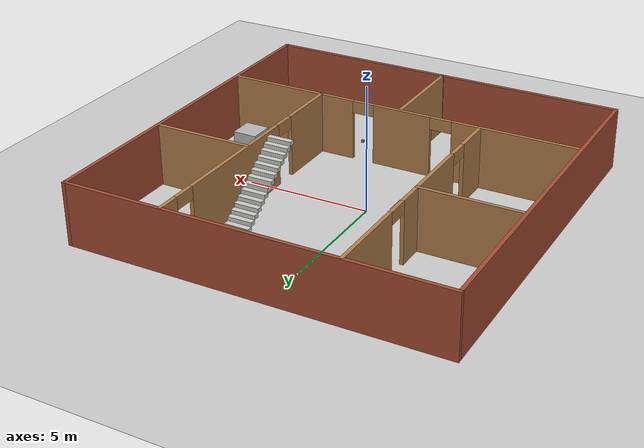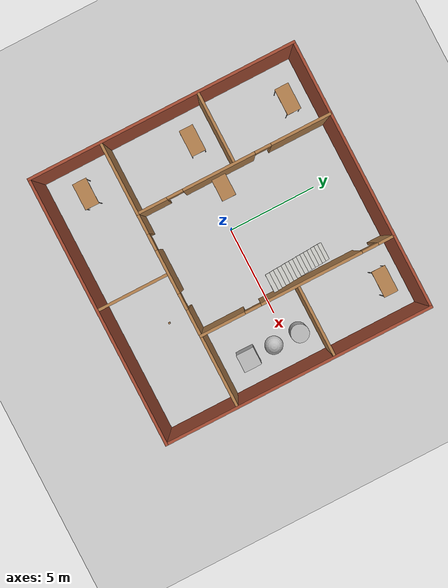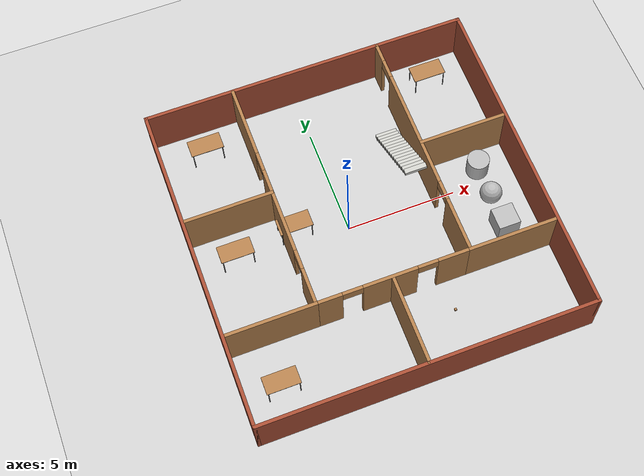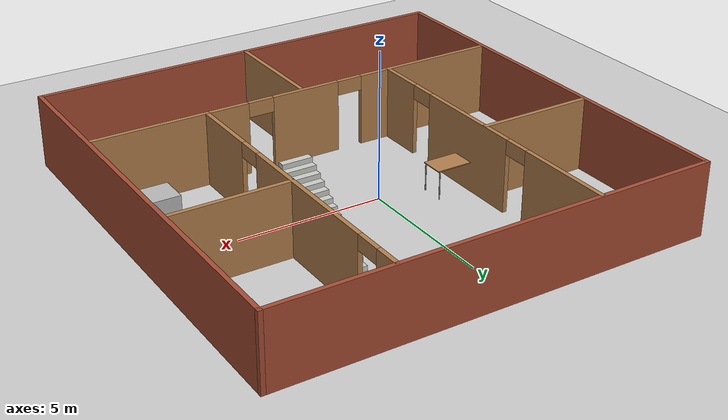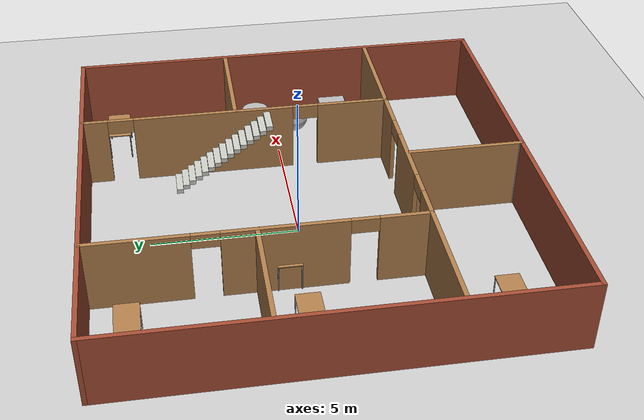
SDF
<sdf version="1.4">
 <world name="default">
  <light name="sun" type="directional">
   <pose>0 0 10 0 -0 0</pose>
   <diffuse>0.8 0.8 0.8 1</diffuse>
   <specular>0.2 0.2 0.2 1</specular>
   <attenuation>
    <range>1000</range>
    <constant>0.9</constant>
    <linear>0.01</linear>
    <quadratic>0.001</quadratic>
   </attenuation>
   <direction>-0.5 0.1 -0.9</direction>
   <spot><inner_angle>0</inner_angle><outer_angle>0</outer_angle><falloff>0</falloff></spot>
  </light>
  <model name="ground_plane">
   <static>1</static>
   <link name="link">
    <collision name="collision">
     <geometry><plane><normal>0 0 1</normal><size>100 100</size></plane></geometry>
     <surface>
      <contact><collide_bitmask>65535</collide_bitmask></contact>
      <friction><ode><mu>100</mu><mu2>50</mu2></ode></friction>
     </surface>
    </collision>
    <visual name="visual">
     <cast_shadows>0</cast_shadows>
     <geometry><plane><normal>0 0 1</normal><size>100 100</size></plane></geometry>
     <material>
      <script><uri>file://media/materials/scripts/gazebo.material</uri><name>Gazebo/Grey</name></script>
     </material>
    </visual>
   </link>
  </model>
  <gravity>0 0 -9.8</gravity>
  <magnetic_field>6e-06 2.3e-05 -4.2e-05</magnetic_field>
  <atmosphere type="adiabatic"/>
  <physics type="ode">
   <max_step_size>0.001</max_step_size>
   <real_time_factor>1</real_time_factor>
   <real_time_update_rate>1000</real_time_update_rate>
  </physics>
  <scene><ambient>0.4 0.4 0.4 1</ambient><background>0.7 0.7 0.7 1</background><shadows>1</shadows></scene>
  <spherical_coordinates>
   <surface_model>EARTH_WGS84</surface_model>
   <latitude_deg>0</latitude_deg>
   <longitude_deg>0</longitude_deg>
   <elevation>0</elevation>
   <heading_deg>0</heading_deg>
  </spherical_coordinates>
  <model name="my_building">
   <pose>2.08113 -0.36477 0 0 -0 0</pose>
   <link name="Stairs_0">
    <visual name="Stairs_0_Visual_0">
     <pose>1.21745 4.206 0.083333 0 -0 0</pose>
     <geometry><box><size>1 0.233333 0.166667</size></box></geometry>
     <material>
      <script><uri>file://media/materials/scripts/gazebo.material</uri><name>Gazebo/CeilingTiled</name></script>
      <ambient>1 1 1 1</ambient>
     </material>
     <meta><layer>0</layer></meta>
    </visual>
    <collision name="Stairs_0_Collision_0">
     <geometry><box><size>1 0.233333 0.166667</size></box></geometry>
     <pose>1.21745 4.206 0.083333 0 -0 0</pose>
    </collision>
    <visual name="Stairs_0_Visual_1">
     <pose>1.21745 3.97267 0.25 0 -0 0</pose>
     <geometry><box><size>1 0.233333 0.166667</size></box></geometry>
     <material>
      <script><uri>file://media/materials/scripts/gazebo.material</uri><name>Gazebo/CeilingTiled</name></script>
      <ambient>1 1 1 1</ambient>
     </material>
     <meta><layer>0</layer></meta>
    </visual>
    <collision name="Stairs_0_Collision_1">
     <geometry><box><size>1 0.233333 0.166667</size></box></geometry>
     <pose>1.21745 3.97267 0.25 0 -0 0</pose>
    </collision>
    <visual name="Stairs_0_Visual_2">
     <pose>1.21745 3.73934 0.416667 0 -0 0</pose>
     <geometry><box><size>1 0.233333 0.166667</size></box></geometry>
     <material>
      <script><uri>file://media/materials/scripts/gazebo.material</uri><name>Gazebo/CeilingTiled</name></script>
      <ambient>1 1 1 1</ambient>
     </material>
     <meta><layer>0</layer></meta>
    </visual>
    <collision name="Stairs_0_Collision_2">
     <geometry><box><size>1 0.233333 0.166667</size></box></geometry>
     <pose>1.21745 3.73934 0.416667 0 -0 0</pose>
    </collision>
    <visual name="Stairs_0_Visual_3">
     <pose>1.21745 3.506 0.583333 0 -0 0</pose>
     <geometry><box><size>1 0.233333 0.166667</size></box></geometry>
     <material>
      <script><uri>file://media/materials/scripts/gazebo.material</uri><name>Gazebo/CeilingTiled</name></script>
      <ambient>1 1 1 1</ambient>
     </material>
     <meta><layer>0</layer></meta>
    </visual>
    <collision name="Stairs_0_Collision_3">
     <geometry><box><size>1 0.233333 0.166667</size></box></geometry>
     <pose>1.21745 3.506 0.583333 0 -0 0</pose>
    </collision>
    <visual name="Stairs_0_Visual_4">
     <pose>1.21745 3.27267 0.75 0 -0 0</pose>
     <geometry><box><size>1 0.233333 0.166667</size></box></geometry>
     <material>
      <script><uri>file://media/materials/scripts/gazebo.material</uri><name>Gazebo/CeilingTiled</name></script>
      <ambient>1 1 1 1</ambient>
     </material>
     <meta><layer>0</layer></meta>
    </visual>
    <collision name="Stairs_0_Collision_4">
     <geometry><box><size>1 0.233333 0.166667</size></box></geometry>
     <pose>1.21745 3.27267 0.75 0 -0 0</pose>
    </collision>
    <visual name="Stairs_0_Visual_5">
     <pose>1.21745 3.03934 0.916667 0 -0 0</pose>
     <geometry><box><size>1 0.233333 0.166667</size></box></geometry>
     <material>
      <script><uri>file://media/materials/scripts/gazebo.material</uri><name>Gazebo/CeilingTiled</name></script>
      <ambient>1 1 1 1</ambient>
     </material>
     <meta><layer>0</layer></meta>
    </visual>
    <collision name="Stairs_0_Collision_5">
     <geometry><box><size>1 0.233333 0.166667</size></box></geometry>
     <pose>1.21745 3.03934 0.916667 0 -0 0</pose>
    </collision>
    <visual name="Stairs_0_Visual_6">
     <pose>1.21745 2.806 1.08333 0 -0 0</pose>
     <geometry><box><size>1 0.233333 0.166667</size></box></geometry>
     <material>
      <script><uri>file://media/materials/scripts/gazebo.material</uri><name>Gazebo/CeilingTiled</name></script>
      <ambient>1 1 1 1</ambient>
     </material>
     <meta><layer>0</layer></meta>
    </visual>
    <collision name="Stairs_0_Collision_6">
     <geometry><box><size>1 0.233333 0.166667</size></box></geometry>
     <pose>1.21745 2.806 1.08333 0 -0 0</pose>
    </collision>
    <visual name="Stairs_0_Visual_7">
     <pose>1.21745 2.57267 1.25 0 -0 0</pose>
     <geometry><box><size>1 0.233333 0.166667</size></box></geometry>
     <material>
      <script><uri>file://media/materials/scripts/gazebo.material</uri><name>Gazebo/CeilingTiled</name></script>
      <ambient>1 1 1 1</ambient>
     </material>
     <meta><layer>0</layer></meta>
    </visual>
    <collision name="Stairs_0_Collision_7">
     <geometry><box><size>1 0.233333 0.166667</size></box></geometry>
     <pose>1.21745 2.57267 1.25 0 -0 0</pose>
    </collision>
    <visual name="Stairs_0_Visual_8">
     <pose>1.21745 2.33934 1.41667 0 -0 0</pose>
     <geometry><box><size>1 0.233333 0.166667</size></box></geometry>
     <material>
      <script><uri>file://media/materials/scripts/gazebo.material</uri><name>Gazebo/CeilingTiled</name></script>
      <ambient>1 1 1 1</ambient>
     </material>
     <meta><layer>0</layer></meta>
    </visual>
    <collision name="Stairs_0_Collision_8">
     <geometry><box><size>1 0.233333 0.166667</size></box></geometry>
     <pose>1.21745 2.33934 1.41667 0 -0 0</pose>
    </collision>
    <visual name="Stairs_0_Visual_9">
     <pose>1.21745 2.106 1.58333 0 -0 0</pose>
     <geometry><box><size>1 0.233333 0.166667</size></box></geometry>
     <material>
      <script><uri>file://media/materials/scripts/gazebo.material</uri><name>Gazebo/CeilingTiled</name></script>
      <ambient>1 1 1 1</ambient>
     </material>
     <meta><layer>0</layer></meta>
    </visual>
    <collision name="Stairs_0_Collision_9">
     <geometry><box><size>1 0.233333 0.166667</size></box></geometry>
     <pose>1.21745 2.106 1.58333 0 -0 0</pose>
    </collision>
    <visual name="Stairs_0_Visual_10">
     <pose>1.21745 1.87267 1.75 0 -0 0</pose>
     <geometry><box><size>1 0.233333 0.166667</size></box></geometry>
     <material>
      <script><uri>file://media/materials/scripts/gazebo.material</uri><name>Gazebo/CeilingTiled</name></script>
      <ambient>1 1 1 1</ambient>
     </material>
     <meta><layer>0</layer></meta>
    </visual>
    <collision name="Stairs_0_Collision_10">
     <geometry><box><size>1 0.233333 0.166667</size></box></geometry>
     <pose>1.21745 1.87267 1.75 0 -0 0</pose>
    </collision>
    <visual name="Stairs_0_Visual_11">
     <pose>1.21745 1.63934 1.91667 0 -0 0</pose>
     <geometry><box><size>1 0.233333 0.166667</size></box></geometry>
     <material>
      <script><uri>file://media/materials/scripts/gazebo.material</uri><name>Gazebo/CeilingTiled</name></script>
      <ambient>1 1 1 1</ambient>
     </material>
     <meta><layer>0</layer></meta>
    </visual>
    <collision name="Stairs_0_Collision_11">
     <geometry><box><size>1 0.233333 0.166667</size></box></geometry>
     <pose>1.21745 1.63934 1.91667 0 -0 0</pose>
    </collision>
    <visual name="Stairs_0_Visual_12">
     <pose>1.21745 1.406 2.08333 0 -0 0</pose>
     <geometry><box><size>1 0.233333 0.166667</size></box></geometry>
     <material>
      <script><uri>file://media/materials/scripts/gazebo.material</uri><name>Gazebo/CeilingTiled</name></script>
      <ambient>1 1 1 1</ambient>
     </material>
     <meta><layer>0</layer></meta>
    </visual>
    <collision name="Stairs_0_Collision_12">
     <geometry><box><size>1 0.233333 0.166667</size></box></geometry>
     <pose>1.21745 1.406 2.08333 0 -0 0</pose>
    </collision>
    <visual name="Stairs_0_Visual_13">
     <pose>1.21745 1.17267 2.25 0 -0 0</pose>
     <geometry><box><size>1 0.233333 0.166667</size></box></geometry>
     <material>
      <script><uri>file://media/materials/scripts/gazebo.material</uri><name>Gazebo/CeilingTiled</name></script>
      <ambient>1 1 1 1</ambient>
     </material>
     <meta><layer>0</layer></meta>
    </visual>
    <collision name="Stairs_0_Collision_13">
     <geometry><box><size>1 0.233333 0.166667</size></box></geometry>
     <pose>1.21745 1.17267 2.25 0 -0 0</pose>
    </collision>
    <visual name="Stairs_0_Visual_14">
     <pose>1.21745 0.939336 2.41667 0 -0 0</pose>
     <geometry><box><size>1 0.233333 0.166667</size></box></geometry>
     <material>
      <script><uri>file://media/materials/scripts/gazebo.material</uri><name>Gazebo/CeilingTiled</name></script>
      <ambient>1 1 1 1</ambient>
     </material>
     <meta><layer>0</layer></meta>
    </visual>
    <collision name="Stairs_0_Collision_14">
     <geometry><box><size>1 0.233333 0.166667</size></box></geometry>
     <pose>1.21745 0.939336 2.41667 0 -0 0</pose>
    </collision>
   </link>
   <link name="Wall_11">
    <pose>-4.90694 1.96963 0 0 -0 -1.5708</pose>
    <visual name="Wall_11_Visual_0">
     <pose>-3.78451 0 1.25 0 -0 0</pose>
     <geometry><box><size>3.37099 0.15 2.5</size></box></geometry>
     <material>
      <script><uri>file://media/materials/scripts/gazebo.material</uri><name>Gazebo/Wood</name></script>
      <ambient>1 1 1 1</ambient>
     </material>
     <meta><layer>0</layer></meta>
    </visual>
    <collision name="Wall_11_Collision_0">
     <geometry><box><size>3.37099 0.15 2.5</size></box></geometry>
     <pose>-3.78451 0 1.25 0 -0 0</pose>
    </collision>
    <visual name="Wall_11_Visual_1">
     <pose>0.822358 0 1.25 0 -0 0</pose>
     <geometry><box><size>4.04274 0.15 2.5</size></box></geometry>
     <material>
      <script><uri>file://media/materials/scripts/gazebo.material</uri><name>Gazebo/Wood</name></script>
      <ambient>1 1 1 1</ambient>
     </material>
     <meta><layer>0</layer></meta>
    </visual>
    <collision name="Wall_11_Collision_1">
     <geometry><box><size>4.04274 0.15 2.5</size></box></geometry>
     <pose>0.822358 0 1.25 0 -0 0</pose>
    </collision>
    <visual name="Wall_11_Visual_2">
     <pose>4.60686 0 1.25 0 -0 0</pose>
     <geometry><box><size>1.72627 0.15 2.5</size></box></geometry>
     <material>
      <script><uri>file://media/materials/scripts/gazebo.material</uri><name>Gazebo/Wood</name></script>
      <ambient>1 1 1 1</ambient>
     </material>
     <meta><layer>0</layer></meta>
    </visual>
    <collision name="Wall_11_Collision_2">
     <geometry><box><size>1.72627 0.15 2.5</size></box></geometry>
     <pose>4.60686 0 1.25 0 -0 0</pose>
    </collision>
    <visual name="Wall_11_Visual_3">
     <pose>-1.64901 0 2.25 0 -0 0</pose>
     <geometry><box><size>0.9 0.15 0.5</size></box></geometry>
     <material>
      <script><uri>file://media/materials/scripts/gazebo.material</uri><name>Gazebo/Wood</name></script>
      <ambient>1 1 1 1</ambient>
     </material>
     <meta><layer>0</layer></meta>
    </visual>
    <collision name="Wall_11_Collision_3">
     <geometry><box><size>0.9 0.15 0.5</size></box></geometry>
     <pose>-1.64901 0 2.25 0 -0 0</pose>
    </collision>
    <visual name="Wall_11_Visual_4">
     <pose>3.29373 0 2.25 0 -0 0</pose>
     <geometry><box><size>0.9 0.15 0.5</size></box></geometry>
     <material>
      <script><uri>file://media/materials/scripts/gazebo.material</uri><name>Gazebo/Wood</name></script>
      <ambient>1 1 1 1</ambient>
     </material>
     <meta><layer>0</layer></meta>
    </visual>
    <collision name="Wall_11_Collision_4">
     <geometry><box><size>0.9 0.15 0.5</size></box></geometry>
     <pose>3.29373 0 2.25 0 -0 0</pose>
    </collision>
   </link>
   <link name="Wall_12">
    <pose>-1.48194 -3.42537 0 0 -0 0</pose>
    <visual name="Wall_12_Visual_0">
     <pose>-2.89158 0 1.25 0 -0 0</pose>
     <geometry><box><size>1.21684 0.15 2.5</size></box></geometry>
     <material>
      <script><uri>file://media/materials/scripts/gazebo.material</uri><name>Gazebo/Wood</name></script>
      <ambient>1 1 1 1</ambient>
     </material>
     <meta><layer>0</layer></meta>
    </visual>
    <collision name="Wall_12_Collision_0">
     <geometry><box><size>1.21684 0.15 2.5</size></box></geometry>
     <pose>-2.89158 0 1.25 0 -0 0</pose>
    </collision>
    <visual name="Wall_12_Visual_1">
     <pose>-0.161658 0 1.25 0 -0 0</pose>
     <geometry><box><size>2.44301 0.15 2.5</size></box></geometry>
     <material>
      <script><uri>file://media/materials/scripts/gazebo.material</uri><name>Gazebo/Wood</name></script>
      <ambient>1 1 1 1</ambient>
     </material>
     <meta><layer>0</layer></meta>
    </visual>
    <collision name="Wall_12_Collision_1">
     <geometry><box><size>2.44301 0.15 2.5</size></box></geometry>
     <pose>-0.161658 0 1.25 0 -0 0</pose>
    </collision>
    <visual name="Wall_12_Visual_2">
     <pose>2.72993 0 1.25 0 -0 0</pose>
     <geometry><box><size>1.54015 0.15 2.5</size></box></geometry>
     <material>
      <script><uri>file://media/materials/scripts/gazebo.material</uri><name>Gazebo/Wood</name></script>
      <ambient>1 1 1 1</ambient>
     </material>
     <meta><layer>0</layer></meta>
    </visual>
    <collision name="Wall_12_Collision_2">
     <geometry><box><size>1.54015 0.15 2.5</size></box></geometry>
     <pose>2.72993 0 1.25 0 -0 0</pose>
    </collision>
    <visual name="Wall_12_Visual_3">
     <pose>-1.83316 0 2.25 0 -0 0</pose>
     <geometry><box><size>0.9 0.15 0.5</size></box></geometry>
     <material>
      <script><uri>file://media/materials/scripts/gazebo.material</uri><name>Gazebo/Wood</name></script>
      <ambient>1 1 1 1</ambient>
     </material>
     <meta><layer>0</layer></meta>
    </visual>
    <collision name="Wall_12_Collision_3">
     <geometry><box><size>0.9 0.15 0.5</size></box></geometry>
     <pose>-1.83316 0 2.25 0 -0 0</pose>
    </collision>
    <visual name="Wall_12_Visual_4">
     <pose>1.50985 0 2.25 0 -0 0</pose>
     <geometry><box><size>0.9 0.15 0.5</size></box></geometry>
     <material>
      <script><uri>file://media/materials/scripts/gazebo.material</uri><name>Gazebo/Wood</name></script>
      <ambient>1 1 1 1</ambient>
     </material>
     <meta><layer>0</layer></meta>
    </visual>
    <collision name="Wall_12_Collision_4">
     <geometry><box><size>0.9 0.15 0.5</size></box></geometry>
     <pose>1.50985 0 2.25 0 -0 0</pose>
    </collision>
   </link>
   <link name="Wall_13">
    <pose>1.94306 1.96963 0 0 -0 1.5708</pose>
    <visual name="Wall_13_Visual_0">
     <pose>-4.18642 0 1.25 0 -0 0</pose>
     <geometry><box><size>2.56715 0.15 2.5</size></box></geometry>
     <material>
      <script><uri>file://media/materials/scripts/gazebo.material</uri><name>Gazebo/Wood</name></script>
      <ambient>1 1 1 1</ambient>
     </material>
     <meta><layer>0</layer></meta>
    </visual>
    <collision name="Wall_13_Collision_0">
     <geometry><box><size>2.56715 0.15 2.5</size></box></geometry>
     <pose>-4.18642 0 1.25 0 -0 0</pose>
    </collision>
    <visual name="Wall_13_Visual_1">
     <pose>0.82864 0 1.25 0 -0 0</pose>
     <geometry><box><size>5.66297 0.15 2.5</size></box></geometry>
     <material>
      <script><uri>file://media/materials/scripts/gazebo.material</uri><name>Gazebo/Wood</name></script>
      <ambient>1 1 1 1</ambient>
     </material>
     <meta><layer>0</layer></meta>
    </visual>
    <collision name="Wall_13_Collision_1">
     <geometry><box><size>5.66297 0.15 2.5</size></box></geometry>
     <pose>0.82864 0 1.25 0 -0 0</pose>
    </collision>
    <visual name="Wall_13_Visual_2">
     <pose>5.01506 0 1.25 0 -0 0</pose>
     <geometry><box><size>0.909873 0.15 2.5</size></box></geometry>
     <material>
      <script><uri>file://media/materials/scripts/gazebo.material</uri><name>Gazebo/Wood</name></script>
      <ambient>1 1 1 1</ambient>
     </material>
     <meta><layer>0</layer></meta>
    </visual>
    <collision name="Wall_13_Collision_2">
     <geometry><box><size>0.909873 0.15 2.5</size></box></geometry>
     <pose>5.01506 0 1.25 0 -0 0</pose>
    </collision>
    <visual name="Wall_13_Visual_3">
     <pose>-2.45285 0 2.25 0 -0 0</pose>
     <geometry><box><size>0.9 0.15 0.5</size></box></geometry>
     <material>
      <script><uri>file://media/materials/scripts/gazebo.material</uri><name>Gazebo/Wood</name></script>
      <ambient>1 1 1 1</ambient>
     </material>
     <meta><layer>0</layer></meta>
    </visual>
    <collision name="Wall_13_Collision_3">
     <geometry><box><size>0.9 0.15 0.5</size></box></geometry>
     <pose>-2.45285 0 2.25 0 -0 0</pose>
    </collision>
    <visual name="Wall_13_Visual_4">
     <pose>4.11013 0 2.25 0 -0 0</pose>
     <geometry><box><size>0.9 0.15 0.5</size></box></geometry>
     <material>
      <script><uri>file://media/materials/scripts/gazebo.material</uri><name>Gazebo/Wood</name></script>
      <ambient>1 1 1 1</ambient>
     </material>
     <meta><layer>0</layer></meta>
    </visual>
    <collision name="Wall_13_Collision_4">
     <geometry><box><size>0.9 0.15 0.5</size></box></geometry>
     <pose>4.11013 0 2.25 0 -0 0</pose>
    </collision>
   </link>
   <link name="Wall_15">
    <collision name="Wall_15_Collision">
     <geometry><box><size>4 0.15 2.5</size></box></geometry>
     <pose>0 0 1.25 0 -0 0</pose>
    </collision>
    <visual name="Wall_15_Visual">
     <pose>0 0 1.25 0 -0 0</pose>
     <geometry><box><size>4 0.15 2.5</size></box></geometry>
     <material>
      <script><uri>file://media/materials/scripts/gazebo.material</uri><name>Gazebo/Wood</name></script>
      <ambient>0.921569 0.807843 0.615686 1</ambient>
     </material>
     <meta><layer>0</layer></meta>
    </visual>
    <pose>-6.84919 2.03204 0 0 -0 3.14159</pose>
   </link>
   <link name="Wall_17">
    <collision name="Wall_17_Collision">
     <geometry><box><size>4 0.15 2.5</size></box></geometry>
     <pose>0 0 1.25 0 -0 0</pose>
    </collision>
    <visual name="Wall_17_Visual">
     <pose>0 0 1.25 0 -0 0</pose>
     <geometry><box><size>4 0.15 2.5</size></box></geometry>
     <material>
      <script><uri>file://media/materials/scripts/gazebo.material</uri><name>Gazebo/Wood</name></script>
      <ambient>1 1 1 1</ambient>
     </material>
     <meta><layer>0</layer></meta>
    </visual>
    <pose>3.87106 2.03163 0 0 -0 0</pose>
   </link>
   <link name="Wall_19">
    <collision name="Wall_19_Collision">
     <geometry><box><size>4 0.15 2.5</size></box></geometry>
     <pose>0 0 1.25 0 -0 0</pose>
    </collision>
    <visual name="Wall_19_Visual">
     <pose>0 0 1.25 0 -0 0</pose>
     <geometry><box><size>4 0.15 2.5</size></box></geometry>
     <material>
      <script><uri>file://media/materials/scripts/gazebo.material</uri><name>Gazebo/Wood</name></script>
      <ambient>1 1 1 1</ambient>
     </material>
     <meta><layer>0</layer></meta>
    </visual>
    <pose>-6.83194 -3.42537 0 0 -0 3.14159</pose>
   </link>
   <link name="Wall_2">
    <collision name="Wall_2_Collision">
     <geometry><box><size>15 0.15 2.5</size></box></geometry>
     <pose>0 0 1.25 0 -0 0</pose>
    </collision>
    <visual name="Wall_2_Visual">
     <pose>0 0 1.25 0 -0 0</pose>
     <geometry><box><size>15 0.15 2.5</size></box></geometry>
     <material>
      <script><uri>file://media/materials/scripts/gazebo.material</uri><name>Gazebo/Bricks</name></script>
      <ambient>1 1 1 1</ambient>
     </material>
     <meta><layer>0</layer></meta>
    </visual>
    <pose>-8.90706 0 0 0 -0 -1.5708</pose>
   </link>
   <link name="Wall_21">
    <collision name="Wall_21_Collision">
     <geometry><box><size>4 0.15 2.5</size></box></geometry>
     <pose>0 0 1.25 0 -0 0</pose>
    </collision>
    <visual name="Wall_21_Visual">
     <pose>0 0 1.25 0 -0 0</pose>
     <geometry><box><size>4 0.15 2.5</size></box></geometry>
     <material>
      <script><uri>file://media/materials/scripts/gazebo.material</uri><name>Gazebo/Wood</name></script>
      <ambient>1 1 1 1</ambient>
     </material>
     <meta><layer>0</layer></meta>
    </visual>
    <pose>3.86806 -3.42537 0 0 -0 0</pose>
   </link>
   <link name="Wall_23">
    <collision name="Wall_23_Collision">
     <geometry><box><size>0.15 0.15 2.5</size></box></geometry>
     <pose>0 0 1.25 0 -0 0</pose>
    </collision>
    <visual name="Wall_23_Visual">
     <pose>0 0 1.25 0 -0 0</pose>
     <geometry><box><size>0.15 0.15 2.5</size></box></geometry>
     <material>
      <script><uri>file://media/materials/scripts/gazebo.material</uri><name>Gazebo/Grey</name></script>
      <ambient>1 1 1 1</ambient>
     </material>
     <meta><layer>0</layer></meta>
    </visual>
    <pose>-1.53994 -7.38637 0 0 -0 0</pose>
   </link>
   <link name="Wall_25">
    <collision name="Wall_25_Collision">
     <geometry><box><size>15 0.15 2.5</size></box></geometry>
     <pose>0 0 1.25 0 -0 0</pose>
    </collision>
    <visual name="Wall_25_Visual">
     <pose>0 0 1.25 0 -0 0</pose>
     <geometry><box><size>15 0.15 2.5</size></box></geometry>
     <material>
      <script><uri>file://media/materials/scripts/gazebo.material</uri><name>Gazebo/Bricks</name></script>
      <ambient>1 1 1 1</ambient>
     </material>
     <meta><layer>0</layer></meta>
    </visual>
    <pose>-1.48206 -7.425 0 0 -0 0</pose>
   </link>
   <link name="Wall_27">
    <collision name="Wall_27_Collision">
     <geometry><box><size>4 0.15 2.5</size></box></geometry>
     <pose>0 0 1.25 0 -0 0</pose>
    </collision>
    <visual name="Wall_27_Visual">
     <pose>0 0 1.25 0 -0 0</pose>
     <geometry><box><size>4 0.15 2.5</size></box></geometry>
     <material>
      <script><uri>file://media/materials/scripts/gazebo.material</uri><name>Gazebo/Wood</name></script>
      <ambient>1 1 1 1</ambient>
     </material>
     <meta><layer>0</layer></meta>
    </visual>
    <pose>-1.53994 -5.46137 0 0 -0 1.5708</pose>
   </link>
   <link name="Wall_4">
    <collision name="Wall_4_Collision">
     <geometry><box><size>15 0.15 2.5</size></box></geometry>
     <pose>0 0 1.25 0 -0 0</pose>
    </collision>
    <visual name="Wall_4_Visual">
     <pose>0 0 1.25 0 -0 0</pose>
     <geometry><box><size>15 0.15 2.5</size></box></geometry>
     <material>
      <script><uri>file://media/materials/scripts/gazebo.material</uri><name>Gazebo/Bricks</name></script>
      <ambient>1 1 1 1</ambient>
     </material>
     <meta><layer>0</layer></meta>
    </visual>
    <pose>5.94294 0 0 0 -0 1.5708</pose>
   </link>
   <link name="Wall_5">
    <collision name="Wall_5_Collision">
     <geometry><box><size>15 0.15 2.5</size></box></geometry>
     <pose>0 0 1.25 0 -0 0</pose>
    </collision>
    <visual name="Wall_5_Visual">
     <pose>0 0 1.25 0 -0 0</pose>
     <geometry><box><size>15 0.15 2.5</size></box></geometry>
     <material>
      <script><uri>file://media/materials/scripts/gazebo.material</uri><name>Gazebo/Bricks</name></script>
      <ambient>0.921569 0.807843 0.615686 1</ambient>
     </material>
     <meta><layer>0</layer></meta>
    </visual>
    <pose>-1.48206 7.425 0 0 -0 3.14159</pose>
   </link>
   <static>1</static>
  </model>
  <model name="table">
   <static>1</static>
   <link name="link">
    <collision name="surface">
     <pose>0 0 1 0 -0 0</pose>
     <geometry><box><size>1.5 0.8 0.03</size></box></geometry>
     <surface><friction><ode><mu>0.6</mu><mu2>0.6</mu2></ode></friction></surface>
    </collision>
    <visual name="visual1">
     <pose>0 0 1 0 -0 0</pose>
     <geometry><box><size>1.5 0.8 0.03</size></box></geometry>
     <material>
      <script><uri>file://media/materials/scripts/gazebo.material</uri><name>Gazebo/Wood</name></script>
     </material>
    </visual>
    <collision name="front_left_leg">
     <pose>0.68 0.38 0.5 0 -0 0</pose>
     <geometry><cylinder><radius>0.02</radius><length>1</length></cylinder></geometry>
    </collision>
    <visual name="front_left_leg">
     <pose>0.68 0.38 0.5 0 -0 0</pose>
     <geometry><cylinder><radius>0.02</radius><length>1</length></cylinder></geometry>
     <material>
      <script><uri>file://media/materials/scripts/gazebo.material</uri><name>Gazebo/Grey</name></script>
     </material>
    </visual>
    <collision name="front_right_leg">
     <pose>0.68 -0.38 0.5 0 -0 0</pose>
     <geometry><cylinder><radius>0.02</radius><length>1</length></cylinder></geometry>
    </collision>
    <visual name="front_right_leg">
     <pose>0.68 -0.38 0.5 0 -0 0</pose>
     <geometry><cylinder><radius>0.02</radius><length>1</length></cylinder></geometry>
     <material>
      <script><uri>file://media/materials/scripts/gazebo.material</uri><name>Gazebo/Grey</name></script>
     </material>
    </visual>
    <collision name="back_right_leg">
     <pose>-0.68 -0.38 0.5 0 -0 0</pose>
     <geometry><cylinder><radius>0.02</radius><length>1</length></cylinder></geometry>
    </collision>
    <visual name="back_right_leg">
     <pose>-0.68 -0.38 0.5 0 -0 0</pose>
     <geometry><cylinder><radius>0.02</radius><length>1</length></cylinder></geometry>
     <material>
      <script><uri>file://media/materials/scripts/gazebo.material</uri><name>Gazebo/Grey</name></script>
     </material>
    </visual>
    <collision name="back_left_leg">
     <pose>-0.68 0.38 0.5 0 -0 0</pose>
     <geometry><cylinder><radius>0.02</radius><length>1</length></cylinder></geometry>
    </collision>
    <visual name="back_left_leg">
     <pose>-0.68 0.38 0.5 0 -0 0</pose>
     <geometry><cylinder><radius>0.02</radius><length>1</length></cylinder></geometry>
     <material>
      <script><uri>file://media/materials/scripts/gazebo.material</uri><name>Gazebo/Grey</name></script>
     </material>
    </visual>
   </link>
   <pose>-5.05605 0.3516 0 0 -0 0</pose>
  </model>
  <model name="table_0">
   <static>1</static>
   <link name="link">
    <collision name="surface">
     <pose>0 0 1 0 -0 0</pose>
     <geometry><box><size>1.5 0.8 0.03</size></box></geometry>
     <surface><friction><ode><mu>0.6</mu><mu2>0.6</mu2></ode></friction></surface>
    </collision>
    <visual name="visual1">
     <pose>0 0 1 0 -0 0</pose>
     <geometry><box><size>1.5 0.8 0.03</size></box></geometry>
     <material>
      <script><uri>file://media/materials/scripts/gazebo.material</uri><name>Gazebo/Wood</name></script>
     </material>
    </visual>
    <collision name="front_left_leg">
     <pose>0.68 0.38 0.5 0 -0 0</pose>
     <geometry><cylinder><radius>0.02</radius><length>1</length></cylinder></geometry>
    </collision>
    <visual name="front_left_leg">
     <pose>0.68 0.38 0.5 0 -0 0</pose>
     <geometry><cylinder><radius>0.02</radius><length>1</length></cylinder></geometry>
     <material>
      <script><uri>file://media/materials/scripts/gazebo.material</uri><name>Gazebo/Grey</name></script>
     </material>
    </visual>
    <collision name="front_right_leg">
     <pose>0.68 -0.38 0.5 0 -0 0</pose>
     <geometry><cylinder><radius>0.02</radius><length>1</length></cylinder></geometry>
    </collision>
    <visual name="front_right_leg">
     <pose>0.68 -0.38 0.5 0 -0 0</pose>
     <geometry><cylinder><radius>0.02</radius><length>1</length></cylinder></geometry>
     <material>
      <script><uri>file://media/materials/scripts/gazebo.material</uri><name>Gazebo/Grey</name></script>
     </material>
    </visual>
    <collision name="back_right_leg">
     <pose>-0.68 -0.38 0.5 0 -0 0</pose>
     <geometry><cylinder><radius>0.02</radius><length>1</length></cylinder></geometry>
    </collision>
    <visual name="back_right_leg">
     <pose>-0.68 -0.38 0.5 0 -0 0</pose>
     <geometry><cylinder><radius>0.02</radius><length>1</length></cylinder></geometry>
     <material>
      <script><uri>file://media/materials/scripts/gazebo.material</uri><name>Gazebo/Grey</name></script>
     </material>
    </visual>
    <collision name="back_left_leg">
     <pose>-0.68 0.38 0.5 0 -0 0</pose>
     <geometry><cylinder><radius>0.02</radius><length>1</length></cylinder></geometry>
    </collision>
    <visual name="back_left_leg">
     <pose>-0.68 0.38 0.5 0 -0 0</pose>
     <geometry><cylinder><radius>0.02</radius><length>1</length></cylinder></geometry>
     <material>
      <script><uri>file://media/materials/scripts/gazebo.material</uri><name>Gazebo/Grey</name></script>
     </material>
    </visual>
   </link>
   <pose>-2.26312 0.683469 0 0 -0 0</pose>
  </model>
  <model name="table_1">
   <static>1</static>
   <link name="link">
    <collision name="surface">
     <pose>0 0 1 0 -0 0</pose>
     <geometry><box><size>1.5 0.8 0.03</size></box></geometry>
     <surface><friction><ode><mu>0.6</mu><mu2>0.6</mu2></ode></friction></surface>
    </collision>
    <visual name="visual1">
     <pose>0 0 1 0 -0 0</pose>
     <geometry><box><size>1.5 0.8 0.03</size></box></geometry>
     <material>
      <script><uri>file://media/materials/scripts/gazebo.material</uri><name>Gazebo/Wood</name></script>
     </material>
    </visual>
    <collision name="front_left_leg">
     <pose>0.68 0.38 0.5 0 -0 0</pose>
     <geometry><cylinder><radius>0.02</radius><length>1</length></cylinder></geometry>
    </collision>
    <visual name="front_left_leg">
     <pose>0.68 0.38 0.5 0 -0 0</pose>
     <geometry><cylinder><radius>0.02</radius><length>1</length></cylinder></geometry>
     <material>
      <script><uri>file://media/materials/scripts/gazebo.material</uri><name>Gazebo/Grey</name></script>
     </material>
    </visual>
    <collision name="front_right_leg">
     <pose>0.68 -0.38 0.5 0 -0 0</pose>
     <geometry><cylinder><radius>0.02</radius><length>1</length></cylinder></geometry>
    </collision>
    <visual name="front_right_leg">
     <pose>0.68 -0.38 0.5 0 -0 0</pose>
     <geometry><cylinder><radius>0.02</radius><length>1</length></cylinder></geometry>
     <material>
      <script><uri>file://media/materials/scripts/gazebo.material</uri><name>Gazebo/Grey</name></script>
     </material>
    </visual>
    <collision name="back_right_leg">
     <pose>-0.68 -0.38 0.5 0 -0 0</pose>
     <geometry><cylinder><radius>0.02</radius><length>1</length></cylinder></geometry>
    </collision>
    <visual name="back_right_leg">
     <pose>-0.68 -0.38 0.5 0 -0 0</pose>
     <geometry><cylinder><radius>0.02</radius><length>1</length></cylinder></geometry>
     <material>
      <script><uri>file://media/materials/scripts/gazebo.material</uri><name>Gazebo/Grey</name></script>
     </material>
    </visual>
    <collision name="back_left_leg">
     <pose>-0.68 0.38 0.5 0 -0 0</pose>
     <geometry><cylinder><radius>0.02</radius><length>1</length></cylinder></geometry>
    </collision>
    <visual name="back_left_leg">
     <pose>-0.68 0.38 0.5 0 -0 0</pose>
     <geometry><cylinder><radius>0.02</radius><length>1</length></cylinder></geometry>
     <material>
      <script><uri>file://media/materials/scripts/gazebo.material</uri><name>Gazebo/Grey</name></script>
     </material>
    </visual>
   </link>
   <pose>-4.68879 5.77042 0 0 -0 0</pose>
  </model>
  <model name="table_2">
   <static>1</static>
   <link name="link">
    <collision name="surface">
     <pose>0 0 1 0 -0 0</pose>
     <geometry><box><size>1.5 0.8 0.03</size></box></geometry>
     <surface><friction><ode><mu>0.6</mu><mu2>0.6</mu2></ode></friction></surface>
    </collision>
    <visual name="visual1">
     <pose>0 0 1 0 -0 0</pose>
     <geometry><box><size>1.5 0.8 0.03</size></box></geometry>
     <material>
      <script><uri>file://media/materials/scripts/gazebo.material</uri><name>Gazebo/Wood</name></script>
     </material>
    </visual>
    <collision name="front_left_leg">
     <pose>0.68 0.38 0.5 0 -0 0</pose>
     <geometry><cylinder><radius>0.02</radius><length>1</length></cylinder></geometry>
    </collision>
    <visual name="front_left_leg">
     <pose>0.68 0.38 0.5 0 -0 0</pose>
     <geometry><cylinder><radius>0.02</radius><length>1</length></cylinder></geometry>
     <material>
      <script><uri>file://media/materials/scripts/gazebo.material</uri><name>Gazebo/Grey</name></script>
     </material>
    </visual>
    <collision name="front_right_leg">
     <pose>0.68 -0.38 0.5 0 -0 0</pose>
     <geometry><cylinder><radius>0.02</radius><length>1</length></cylinder></geometry>
    </collision>
    <visual name="front_right_leg">
     <pose>0.68 -0.38 0.5 0 -0 0</pose>
     <geometry><cylinder><radius>0.02</radius><length>1</length></cylinder></geometry>
     <material>
      <script><uri>file://media/materials/scripts/gazebo.material</uri><name>Gazebo/Grey</name></script>
     </material>
    </visual>
    <collision name="back_right_leg">
     <pose>-0.68 -0.38 0.5 0 -0 0</pose>
     <geometry><cylinder><radius>0.02</radius><length>1</length></cylinder></geometry>
    </collision>
    <visual name="back_right_leg">
     <pose>-0.68 -0.38 0.5 0 -0 0</pose>
     <geometry><cylinder><radius>0.02</radius><length>1</length></cylinder></geometry>
     <material>
      <script><uri>file://media/materials/scripts/gazebo.material</uri><name>Gazebo/Grey</name></script>
     </material>
    </visual>
    <collision name="back_left_leg">
     <pose>-0.68 0.38 0.5 0 -0 0</pose>
     <geometry><cylinder><radius>0.02</radius><length>1</length></cylinder></geometry>
    </collision>
    <visual name="back_left_leg">
     <pose>-0.68 0.38 0.5 0 -0 0</pose>
     <geometry><cylinder><radius>0.02</radius><length>1</length></cylinder></geometry>
     <material>
      <script><uri>file://media/materials/scripts/gazebo.material</uri><name>Gazebo/Grey</name></script>
     </material>
    </visual>
   </link>
   <pose>6.08141 5.87124 0 0 -0 0</pose>
  </model>
  <model name="table_3">
   <static>1</static>
   <link name="link">
    <collision name="surface">
     <pose>0 0 1 0 -0 0</pose>
     <geometry><box><size>1.5 0.8 0.03</size></box></geometry>
     <surface><friction><ode><mu>0.6</mu><mu2>0.6</mu2></ode></friction></surface>
    </collision>
    <visual name="visual1">
     <pose>0 0 1 0 -0 0</pose>
     <geometry><box><size>1.5 0.8 0.03</size></box></geometry>
     <material>
      <script><uri>file://media/materials/scripts/gazebo.material</uri><name>Gazebo/Wood</name></script>
     </material>
    </visual>
    <collision name="front_left_leg">
     <pose>0.68 0.38 0.5 0 -0 0</pose>
     <geometry><cylinder><radius>0.02</radius><length>1</length></cylinder></geometry>
    </collision>
    <visual name="front_left_leg">
     <pose>0.68 0.38 0.5 0 -0 0</pose>
     <geometry><cylinder><radius>0.02</radius><length>1</length></cylinder></geometry>
     <material>
      <script><uri>file://media/materials/scripts/gazebo.material</uri><name>Gazebo/Grey</name></script>
     </material>
    </visual>
    <collision name="front_right_leg">
     <pose>0.68 -0.38 0.5 0 -0 0</pose>
     <geometry><cylinder><radius>0.02</radius><length>1</length></cylinder></geometry>
    </collision>
    <visual name="front_right_leg">
     <pose>0.68 -0.38 0.5 0 -0 0</pose>
     <geometry><cylinder><radius>0.02</radius><length>1</length></cylinder></geometry>
     <material>
      <script><uri>file://media/materials/scripts/gazebo.material</uri><name>Gazebo/Grey</name></script>
     </material>
    </visual>
    <collision name="back_right_leg">
     <pose>-0.68 -0.38 0.5 0 -0 0</pose>
     <geometry><cylinder><radius>0.02</radius><length>1</length></cylinder></geometry>
    </collision>
    <visual name="back_right_leg">
     <pose>-0.68 -0.38 0.5 0 -0 0</pose>
     <geometry><cylinder><radius>0.02</radius><length>1</length></cylinder></geometry>
     <material>
      <script><uri>file://media/materials/scripts/gazebo.material</uri><name>Gazebo/Grey</name></script>
     </material>
    </visual>
    <collision name="back_left_leg">
     <pose>-0.68 0.38 0.5 0 -0 0</pose>
     <geometry><cylinder><radius>0.02</radius><length>1</length></cylinder></geometry>
    </collision>
    <visual name="back_left_leg">
     <pose>-0.68 0.38 0.5 0 -0 0</pose>
     <geometry><cylinder><radius>0.02</radius><length>1</length></cylinder></geometry>
     <material>
      <script><uri>file://media/materials/scripts/gazebo.material</uri><name>Gazebo/Grey</name></script>
     </material>
    </visual>
   </link>
   <pose>-5.14548 -5.86576 0 0 -0 0</pose>
  </model>
  <model name="textured_shapes">
   <pose>6.45291 -0.79653 0.5 0 -0 0</pose>
   <link name="box">
    <pose>0 -1.5 0 0 -0 0</pose>
    <collision name="collision"><geometry><box><size>1 1 1</size></box></geometry></collision>
    <visual name="visual">
     <geometry><box><size>1 1 1</size></box></geometry>
     <material>
      <script>
       <uri>model://textured_shapes/materials/scripts</uri>
       <uri>model://textured_shapes/materials/textures</uri>
       <name>TexturedShape/Squares</name>
      </script>
     </material>
    </visual>
    <inertial>
     <inertia><ixx>1</ixx><ixy>0</ixy><ixz>0</ixz><iyy>1</iyy><iyz>0</iyz><izz>1</izz></inertia>
     <mass>1</mass>
    </inertial>
   </link>
   <link name="sphere">
    <collision name="collision"><geometry><sphere><radius>0.5</radius></sphere></geometry></collision>
    <visual name="visual">
     <geometry><sphere><radius>0.5</radius></sphere></geometry>
     <material>
      <script>
       <uri>model://textured_shapes/materials/scripts</uri>
       <uri>model://textured_shapes/materials/textures</uri>
       <name>TexturedShape/Squares</name>
      </script>
     </material>
    </visual>
    <inertial>
     <inertia><ixx>1</ixx><ixy>0</ixy><ixz>0</ixz><iyy>1</iyy><iyz>0</iyz><izz>1</izz></inertia>
     <mass>1</mass>
    </inertial>
   </link>
   <link name="cylinder">
    <pose>0 1.5 0 0 -0 0</pose>
    <collision name="collision">
     <geometry><cylinder><radius>0.5</radius><length>1</length></cylinder></geometry>
    </collision>
    <visual name="visual">
     <geometry><cylinder><radius>0.5</radius><length>1</length></cylinder></geometry>
     <material>
      <script>
       <uri>model://textured_shapes/materials/scripts</uri>
       <uri>model://textured_shapes/materials/textures</uri>
       <name>TexturedShape/Squares</name>
      </script>
     </material>
    </visual>
    <inertial>
     <inertia><ixx>1</ixx><ixy>0</ixy><ixz>0</ixz><iyy>1</iyy><iyz>0</iyz><izz>1</izz></inertia>
     <mass>1</mass>
    </inertial>
   </link>
  </model>
  <model name="wood_cube_10cm">
   <link name="link">
    <pose>0 0 0.05 0 -0 0</pose>
    <inertial>
     <mass>0.5167</mass>
     <inertia>
      <ixx>0.000861167</ixx>
      <ixy>0</ixy>
      <ixz>0</ixz>
      <iyy>0.000861167</iyy>
      <iyz>0</iyz>
      <izz>0.000861167</izz>
     </inertia>
    </inertial>
    <collision name="collision">
     <geometry><box><size>0.1 0.1 0.1</size></box></geometry>
     <surface>
      <contact>
       <poissons_ratio>0.347</poissons_ratio>
       <elastic_modulus>8.8e+09</elastic_modulus>
       <ode><kp>100000</kp><kd>100</kd><max_vel>100</max_vel><min_depth>0.001</min_depth></ode>
      </contact>
      <friction>
       <torsional>
        <coefficient>1</coefficient>
        <use_patch_radius>0</use_patch_radius>
        <surface_radius>0.01</surface_radius>
       </torsional>
      </friction>
     </surface>
    </collision>
    <visual name="visual">
     <geometry><box><size>0.1 0.1 0.1</size></box></geometry>
     <material>
      <script><uri>file://media/materials/scripts/gazebo.material</uri><name>Gazebo/Wood</name></script>
     </material>
    </visual>
   </link>
   <pose>2.90933 -5.22828 -0.001013 0 -0 0</pose>
  </model>
  <light name="user_point_light_0" type="point">
   <pose>0.331076 1.16128 1 0 -0 0</pose>
   <diffuse>0.5 0.5 0.5 1</diffuse>
   <specular>0.1 0.1 0.1 1</specular>
   <attenuation>
    <range>20</range>
    <constant>0.5</constant>
    <linear>0.01</linear>
    <quadratic>0.001</quadratic>
   </attenuation>
   <cast_shadows>0</cast_shadows>
   <direction>0 0 -1</direction>
   <spot><inner_angle>0</inner_angle><outer_angle>0</outer_angle><falloff>0</falloff></spot>
  </light>
  <light name="user_spot_light_0" type="spot">
   <pose>-5.04656 0.218427 1 0 -0 0</pose>
   <diffuse>0.5 0.5 0.5 1</diffuse>
   <specular>0.1 0.1 0.1 1</specular>
   <direction>0 0 -1</direction>
   <attenuation>
    <range>20</range>
    <constant>0.5</constant>
    <linear>0.01</linear>
    <quadratic>0.001</quadratic>
   </attenuation>
   <cast_shadows>0</cast_shadows>
   <spot><inner_angle>0.6</inner_angle><outer_angle>1</outer_angle><falloff>1</falloff></spot>
  </light>
  <light name="user_spot_light_0_clone" type="spot">
   <pose>-4.43162 -5.64843 2.38461 0 -0 0</pose>
   <diffuse>0.5 0.5 0.5 1</diffuse>
   <specular>0.1 0.1 0.1 1</specular>
   <direction>0 0 -1</direction>
   <attenuation>
    <range>20</range>
    <constant>0.5</constant>
    <linear>0.01</linear>
    <quadratic>0.001</quadratic>
   </attenuation>
   <cast_shadows>0</cast_shadows>
   <spot><inner_angle>0.6</inner_angle><outer_angle>1</outer_angle><falloff>1</falloff></spot>
  </light>
  <light name="user_spot_light_0_clone_0" type="spot">
   <pose>-1.14041 -5.64715 2.38461 0 -0 0</pose>
   <diffuse>0.5 0.5 0.5 1</diffuse>
   <specular>0.1 0.1 0.1 1</specular>
   <direction>0 0 -1</direction>
   <attenuation>
    <range>20</range>
    <constant>0.5</constant>
    <linear>0.01</linear>
    <quadratic>0.001</quadratic>
   </attenuation>
   <cast_shadows>0</cast_shadows>
   <spot><inner_angle>0.6</inner_angle><outer_angle>1</outer_angle><falloff>1</falloff></spot>
  </light>
  <light name="user_spot_light_0_clone_1" type="spot">
   <pose>2.89467 -5.70446 2.38461 0 -0 0</pose>
   <diffuse>0.5 0.5 0.5 1</diffuse>
   <specular>0.1 0.1 0.1 1</specular>
   <direction>0 0 -1</direction>
   <attenuation>
    <range>20</range>
    <constant>0.5</constant>
    <linear>0.01</linear>
    <quadratic>0.001</quadratic>
   </attenuation>
   <cast_shadows>0</cast_shadows>
   <spot><inner_angle>0.6</inner_angle><outer_angle>1</outer_angle><falloff>1</falloff></spot>
  </light>
  <light name="user_spot_light_0_clone_2" type="spot">
   <pose>5.8303 -5.71424 2.38461 0 -0 0</pose>
   <diffuse>0.5 0.5 0.5 1</diffuse>
   <specular>0.1 0.1 0.1 1</specular>
   <direction>0 0 -1</direction>
   <attenuation>
    <range>20</range>
    <constant>0.5</constant>
    <linear>0.01</linear>
    <quadratic>0.001</quadratic>
   </attenuation>
   <cast_shadows>0</cast_shadows>
   <spot><inner_angle>0.6</inner_angle><outer_angle>1</outer_angle><falloff>1</falloff></spot>
  </light>
  <light name="user_spot_light_0_clone_3" type="spot">
   <pose>6.41217 -1.78972 2.38461 0 -0 0</pose>
   <diffuse>0.5 0.5 0.5 1</diffuse>
   <specular>0.1 0.1 0.1 1</specular>
   <direction>0 0 -1</direction>
   <attenuation>
    <range>20</range>
    <constant>0.5</constant>
    <linear>0.01</linear>
    <quadratic>0.001</quadratic>
   </attenuation>
   <cast_shadows>0</cast_shadows>
   <spot><inner_angle>0.6</inner_angle><outer_angle>1</outer_angle><falloff>1</falloff></spot>
  </light>
  <light name="user_spot_light_0_clone_4" type="spot">
   <pose>6.23365 4.64789 2.38461 0 -0 0</pose>
   <diffuse>0.5 0.5 0.5 1</diffuse>
   <specular>0.1 0.1 0.1 1</specular>
   <direction>0 0 -1</direction>
   <attenuation>
    <range>20</range>
    <constant>0.5</constant>
    <linear>0.01</linear>
    <quadratic>0.001</quadratic>
   </attenuation>
   <cast_shadows>0</cast_shadows>
   <spot><inner_angle>0.6</inner_angle><outer_angle>1</outer_angle><falloff>1</falloff></spot>
  </light>
  <light name="user_spot_light_0_clone_5" type="spot">
   <pose>-4.97614 4.43089 2.38461 0 -0 0</pose>
   <diffuse>0.5 0.5 0.5 1</diffuse>
   <specular>0.1 0.1 0.1 1</specular>
   <direction>0 0 -1</direction>
   <attenuation>
    <range>20</range>
    <constant>0.5</constant>
    <linear>0.01</linear>
    <quadratic>0.001</quadratic>
   </attenuation>
   <cast_shadows>0</cast_shadows>
   <spot><inner_angle>0.6</inner_angle><outer_angle>1</outer_angle><falloff>1</falloff></spot>
  </light>
  <light name="user_spot_light_0_clone_6" type="spot">
   <pose>0.642953 6.38274 2.38461 0 -0 0</pose>
   <diffuse>0.5 0.5 0.5 1</diffuse>
   <specular>0.1 0.1 0.1 1</specular>
   <direction>0 0 -1</direction>
   <attenuation>
    <range>20</range>
    <constant>0.5</constant>
    <linear>0.01</linear>
    <quadratic>0.001</quadratic>
   </attenuation>
   <cast_shadows>0</cast_shadows>
   <spot><inner_angle>0.6</inner_angle><outer_angle>1</outer_angle><falloff>1</falloff></spot>
  </light>
 </world>
</sdf>
